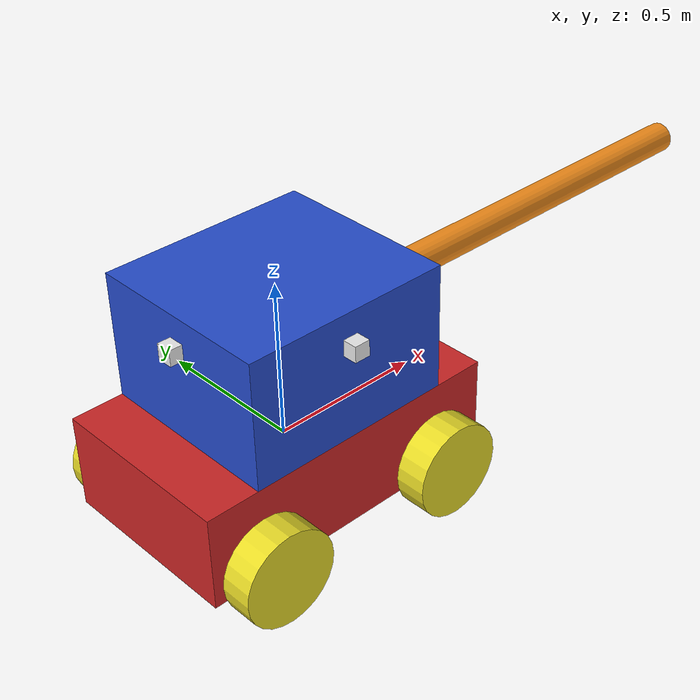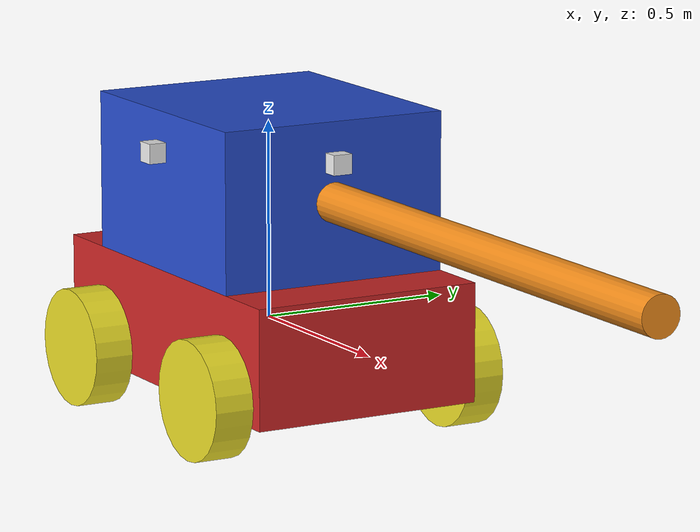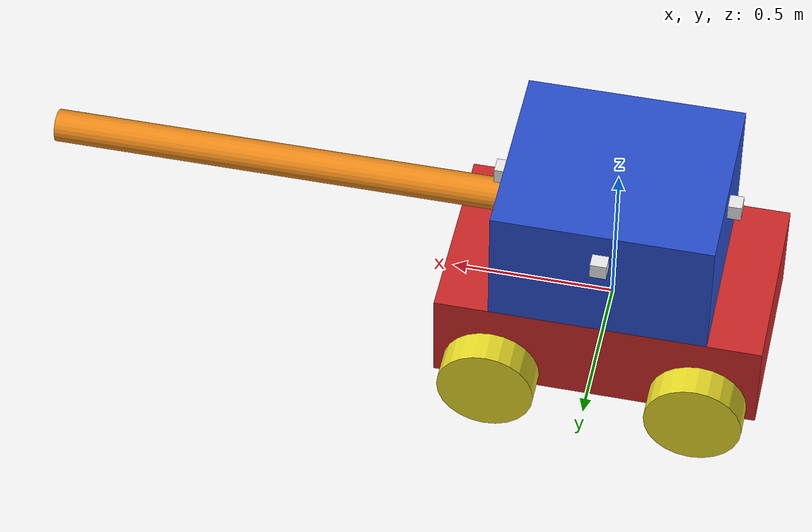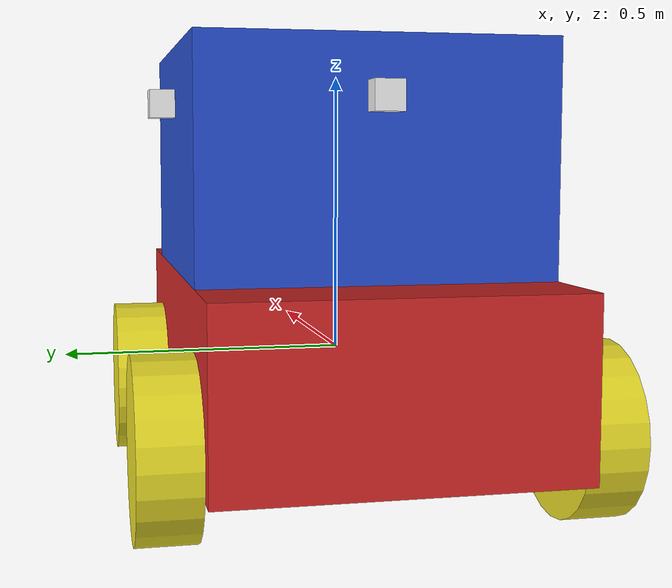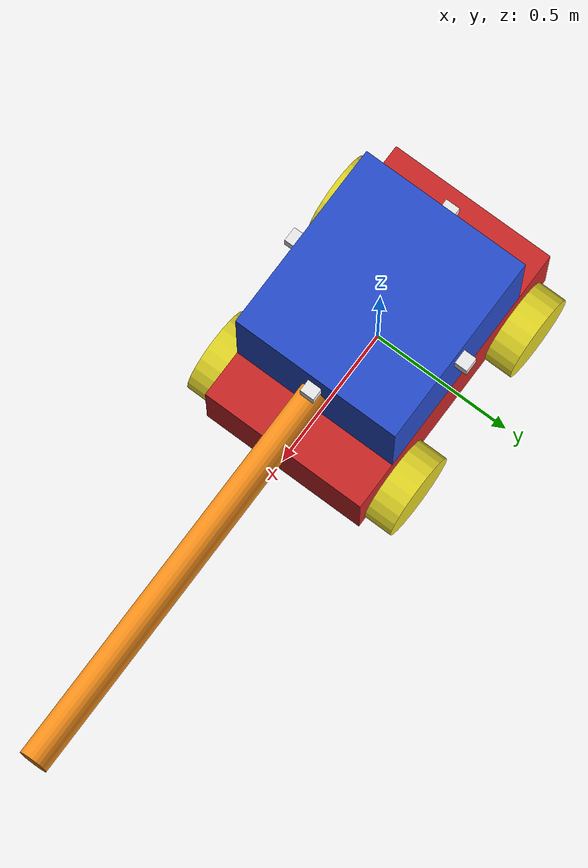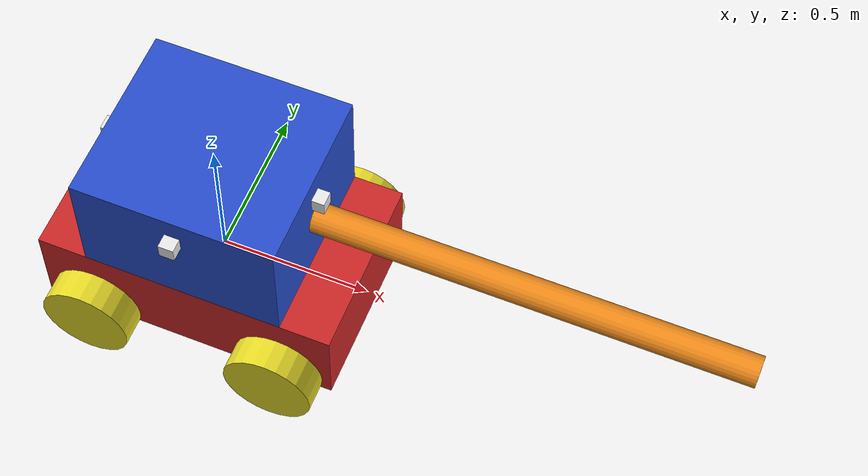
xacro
<?xml version="1.0"?>

<robot name="auto_turret_vehicle"
xmlns:xacro="http://www.ros.org/wiki/xacro">

<xacro:property name="body_link_x_dim" value="1"/>
<xacro:property name="body_link_y_dim" value="0.6"/>
<xacro:property name="body_link_z_dim" value="0.3"/>

<xacro:property name="wheel_link_radius" value="0.15"/>
<xacro:property name="wheel_link_length" value="0.1"/>
<xacro:property name="wheel_link_z_location" value="-0.1"/>

<xacro:property name="body_density" value="2710.0"/>
<xacro:property name="wheel_density" value="2710.0"/>

<xacro:property name="pi_const" value="3.14159265"/>

<xacro:property name="body_mass"
value="${body_density*body_link_x_dim*body_link_y_dim*body_link_z_dim}"/>
<xacro:property name="wheel_mass"
value="${wheel_density*pi_const*wheel_link_radius*wheel_link_radius*wheel_link_length}"/>

<xacro:property name="Iz_wheel"
value="${0.5*wheel_mass*wheel_link_radius*wheel_link_radius}"/>
<xacro:property name="I_wheel"
value="${(1.0/12.0)*wheel_mass*(3.0*wheel_link_radius*wheel_link_radius+wheel_link_length*wheel_link_length)}"/>

<xacro:macro name="inertia_wheel">
    <inertial>
    <origin rpy="0 0 0" xyz="0 0 0"/>
    <mass value="${wheel_mass}"/>
    <inertia ixx="${I_wheel}" ixy="0.0" ixz="0.0" iyy="${I_wheel}" iyz="0.0" izz="${Iz_wheel}"/>
    </inertial>
</xacro:macro>

<xacro:include filename="$(find mobile_robot)/model/robot.gazebo"/>

<link name="dummy">
</link>

<joint name="dummy_joint" type="fixed">
    <parent link="dummy"/>
    <child link="body_link"/>
</joint>

<link name="body_link">
    <visual>
        <geometry>
            <box size="${body_link_x_dim} ${body_link_y_dim} ${body_link_z_dim}"/>
        </geometry>
        <origin rpy="0 0 0" xyz="0 0 0"/>
    </visual>

    <collision>
        <geometry>
            <box size="${body_link_x_dim} ${body_link_y_dim} ${body_link_z_dim}"/>
        </geometry>
        <origin rpy="0 0 0" xyz="0 0 0"/>
    </collision>

    <inertial>
        <origin rpy="0 0 0" xyz="0 0 0"/>
        <mass value="${body_mass}"/>
        <inertia
        ixx="${(1.0/12.0)*body_mass*(body_link_y_dim*body_link_y_dim+body_link_z_dim*body_link_z_dim)}"
        ixy="0" ixz="0" iyy="${(1.0/12.0)*body_mass*(body_link_x_dim*body_link_x_dim+body_link_z_dim*body_link_z_dim)}"
        iyz="0" izz="${(1.0/12.0)*body_mass*(body_link_y_dim*body_link_y_dim+body_link_x_dim*body_link_x_dim)}" />
    </inertial>
</link>

<joint name="wheel1_joint" type="continuous">
    <parent link="body_link"/>
    <child link="wheel1_link"/>
    <origin xyz="${-body_link_x_dim/2+1.2*wheel_link_radius} ${-body_link_y_dim/2-wheel_link_length/2} ${wheel_link_z_location}" rpy="0 0 0"/>
    <axis xyz="0 1 0"/>
    <limit effort="1000" velocity="1000"/>
    <dynamics damping="1.0" friction="1.0"/>
</joint>

<link name="wheel1_link">
    <visual>
        <origin rpy="1.570795 0 0" xyz="0 0 0"/>
        <geometry>
            <cylinder length="${wheel_link_length}" radius="${wheel_link_radius}"/>
        </geometry>
    </visual>

    <collision>
        <origin rpy="1.570795 0 0" xyz="0 0 0"/>
        <geometry>
            <cylinder length="${wheel_link_length}" radius="${wheel_link_radius}"/>
        </geometry>
    </collision>

    <xacro:inertia_wheel/>
</link>

<joint name="wheel2_joint" type="continuous">
    <parent link="body_link"/>
    <child link="wheel2_link"/>
    <origin xyz="${-body_link_x_dim/2+1.2*wheel_link_radius} ${body_link_y_dim/2+wheel_link_length/2} ${wheel_link_z_location}" rpy="0 0 0"/>
    <axis xyz="0 1 0"/>
    <limit effort="1000" velocity="1000"/>
    <dynamics damping="1.0" friction="1.0"/>
</joint>

<link name="wheel2_link">
    <visual>
        <origin rpy="1.570795 0 0" xyz="0 0 0"/>
        <geometry>
            <cylinder length="${wheel_link_length}" radius="${wheel_link_radius}"/>
        </geometry>
    </visual>

    <collision>
        <origin rpy="1.570795 0 0" xyz="0 0 0"/>
        <geometry>
            <cylinder length="${wheel_link_length}" radius="${wheel_link_radius}"/>
        </geometry>
    </collision>

    <xacro:inertia_wheel/>
</link>

<joint name="wheel3_joint" type="continuous">
    <parent link="body_link"/>
    <child link="wheel3_link"/>
    <origin xyz="${body_link_x_dim/2-1.2*wheel_link_radius} ${-body_link_y_dim/2-wheel_link_length/2} ${wheel_link_z_location}" rpy="0 0 0"/>
    <axis xyz="0 1 0"/>
    <limit effort="1000" velocity="1000"/>
    <dynamics damping="1.0" friction="1.0"/>
</joint>

<link name="wheel3_link">
    <visual>
        <origin rpy="1.570795 0 0" xyz="0 0 0"/>
        <geometry>
            <cylinder length="${wheel_link_length}" radius="${wheel_link_radius}"/>
        </geometry>
    </visual>

    <collision>
        <origin rpy="1.570795 0 0" xyz="0 0 0"/>
        <geometry>
            <cylinder length="${wheel_link_length}" radius="${wheel_link_radius}"/>
        </geometry>
    </collision>

    <xacro:inertia_wheel/>
</link>

<joint name="wheel4_joint" type="continuous">
    <parent link="body_link"/>
    <child link="wheel4_link"/>
    <origin xyz="${body_link_x_dim/2-1.2*wheel_link_radius} ${body_link_y_dim/2+wheel_link_length/2} ${wheel_link_z_location}" rpy="0 0 0"/>
    <axis xyz="0 1 0"/>
    <limit effort="1000" velocity="1000"/>
    <dynamics damping="1.0" friction="1.0"/>
</joint>

<link name="wheel4_link">
    <visual>
        <origin rpy="1.570795 0 0" xyz="0 0 0"/>
        <geometry>
            <cylinder length="${wheel_link_length}" radius="${wheel_link_radius}"/>
        </geometry>
    </visual>

    <collision>
        <origin rpy="1.570795 0 0" xyz="0 0 0"/>
        <geometry>
            <cylinder length="${wheel_link_length}" radius="${wheel_link_radius}"/>
        </geometry>
    </collision>

    <xacro:inertia_wheel/>
</link>

<joint name="turret_joint" type="continuous">
    <parent link="body_link"/>
    <child link="turret_link"/>
    <origin xyz="0 0 0.35" rpy="0 0 0"/>
    <axis xyz="0 0 1"/>
</joint>

<link name="turret_link">
    <visual>
        <geometry>
            <box size="${body_link_x_dim/1.5} ${body_link_y_dim} 0.4"/>
        </geometry>
        <origin rpy="0 0 0" xyz="0 0 0"/>
    </visual>

    <collision>
        <geometry>
            <box size="${body_link_x_dim/1.5} ${body_link_y_dim} 0.2"/>
        </geometry>
        <origin rpy="0 0 0" xyz="0 0 0"/>
    </collision>

    <inertial>
        <origin rpy="0 0 0" xyz="0 0 0"/>
        <mass value="${body_mass/7}"/>
        <inertia
        ixx="${(1.0/12.0)*body_mass/3*(body_link_y_dim/2*body_link_y_dim/2+body_link_z_dim/2*body_link_z_dim/2)}"
        ixy="0" ixz="0" iyy="${(1.0/12.0)*body_mass/3*(body_link_x_dim/2*body_link_x_dim/2+body_link_z_dim/2*body_link_z_dim/2)}"
        iyz="0" izz="${(1.0/12.0)*body_mass/3*(body_link_y_dim/2*body_link_y_dim/2+body_link_x_dim/2*body_link_x_dim/2)}" />
    </inertial>
</link>

<joint name="gun_joint" type="fixed">
    <parent link="turret_link"/>
    <child link="gun_link"/>
    <origin xyz="${body_link_x_dim/1.0} 0 0" rpy="0 0 0"/>
    <axis xyz="0 0 0"/>
</joint>

<link name="gun_link">
    <visual>
        <geometry>
            <cylinder length="${body_link_x_dim*1.5}" radius="0.05"/>
        </geometry>
        <origin rpy="0 ${pi_const/2} 0" xyz="0 0 0"/>
    </visual>

    <collision>
        <geometry>
            <box size="${body_link_x_dim*1.5} 0.1 0.1"/>
        </geometry>
        <origin rpy="0 0 0" xyz="0 0 0"/>
    </collision>

    <inertial>
        <origin rpy="0 0 0" xyz="0 0 0"/>
        <mass value="${body_mass/10}"/>
        <inertia
        ixx="${(1.0/12.0)*body_mass/5*(body_link_y_dim/2*body_link_y_dim/2+body_link_z_dim/2*body_link_z_dim/2)}"
        ixy="0" ixz="0" iyy="${(1.0/12.0)*body_mass/5*(body_link_x_dim/2*body_link_x_dim/2+body_link_z_dim/2*body_link_z_dim/2)}"
        iyz="0" izz="${(1.0/12.0)*body_mass/5*(body_link_y_dim/2*body_link_y_dim/2+body_link_x_dim/2*body_link_x_dim/2)}" />
    </inertial>
</link>

<joint name="front_camera_joint" type="fixed">
    <parent link="turret_link"/>
    <child link="front_camera_link"/>
    <origin xyz="0.35 0 0.1" rpy="0 0 0"/>
</joint>

<link name="front_camera_link">
    <visual>
        <geometry>
            <box size="0.05 0.05 0.05"/>
        </geometry>
        <origin rpy="0 0 0" xyz="0 0 0"/>
    </visual>

    <collision>
        <geometry>
            <box size="0.05 0.05 0.05"/>
        </geometry>
        <origin rpy="0 0 0" xyz="0 0 0"/>
    </collision>

    <inertial>
        <origin rpy="0 0 0" xyz="0 0 0"/>
        <mass value="${body_mass/30}"/>
        <inertia
        ixx="${(1.0/12.0)*body_mass/5*(body_link_y_dim/2*body_link_y_dim/2+body_link_z_dim/2*body_link_z_dim/2)}"
        ixy="0" ixz="0" iyy="${(1.0/12.0)*body_mass/5*(body_link_x_dim/2*body_link_x_dim/2+body_link_z_dim/2*body_link_z_dim/2)}"
        iyz="0" izz="${(1.0/12.0)*body_mass/5*(body_link_y_dim/2*body_link_y_dim/2+body_link_x_dim/2*body_link_x_dim/2)}" />
    </inertial>
</link>

<joint name="front_camera_optical_joint" type="fixed">
    <parent link="front_camera_link"/>
    <child link="front_camera_link_optical"/>
    <origin xyz="0 0 0" rpy="${-pi_const/2} 0 ${-pi_const/2}"/>
</joint>

<link name="front_camera_link_optical">
</link>

<joint name="right_camera_joint" type="fixed">
    <parent link="turret_link"/>
    <child link="right_camera_link"/>
    <origin xyz="0 -0.32 0.1" rpy="0 0 ${-pi_const/2}"/>
</joint>

<link name="right_camera_link">
    <visual>
        <geometry>
            <box size="0.05 0.05 0.05"/>
        </geometry>
        <origin rpy="0 0 0" xyz="0 0 0"/>
    </visual>

    <collision>
        <geometry>
            <box size="0.05 0.05 0.05"/>
        </geometry>
        <origin rpy="0 0 0" xyz="0 0 0"/>
    </collision>

    <inertial>
        <origin rpy="0 0 0" xyz="0 0 0"/>
        <mass value="${body_mass/30}"/>
        <inertia
        ixx="${(1.0/12.0)*body_mass/5*(body_link_y_dim/2*body_link_y_dim/2+body_link_z_dim/2*body_link_z_dim/2)}"
        ixy="0" ixz="0" iyy="${(1.0/12.0)*body_mass/5*(body_link_x_dim/2*body_link_x_dim/2+body_link_z_dim/2*body_link_z_dim/2)}"
        iyz="0" izz="${(1.0/12.0)*body_mass/5*(body_link_y_dim/2*body_link_y_dim/2+body_link_x_dim/2*body_link_x_dim/2)}" />
    </inertial>
</link>

<joint name="right_camera_optical_joint" type="fixed">
    <parent link="right_camera_link"/>
    <child link="right_camera_link_optical"/>
    <origin xyz="0 0 0" rpy="${-pi_const/2} 0 ${-pi_const/2}"/>
</joint>

<link name="right_camera_link_optical">
</link>

<joint name="rear_camera_joint" type="fixed">
    <parent link="turret_link"/>
    <child link="rear_camera_link"/>
    <origin xyz="-0.35 0 0.1" rpy="0 0 ${pi_const}"/>
</joint>

<link name="rear_camera_link">
    <visual>
        <geometry>
            <box size="0.05 0.05 0.05"/>
        </geometry>
        <origin rpy="0 0 0" xyz="0 0 0"/>
    </visual>

    <collision>
        <geometry>
            <box size="0.05 0.05 0.05"/>
        </geometry>
        <origin rpy="0 0 0" xyz="0 0 0"/>
    </collision>

    <inertial>
        <origin rpy="0 0 0" xyz="0 0 0"/>
        <mass value="${body_mass/30}"/>
        <inertia
        ixx="${(1.0/12.0)*body_mass/5*(body_link_y_dim/2*body_link_y_dim/2+body_link_z_dim/2*body_link_z_dim/2)}"
        ixy="0" ixz="0" iyy="${(1.0/12.0)*body_mass/5*(body_link_x_dim/2*body_link_x_dim/2+body_link_z_dim/2*body_link_z_dim/2)}"
        iyz="0" izz="${(1.0/12.0)*body_mass/5*(body_link_y_dim/2*body_link_y_dim/2+body_link_x_dim/2*body_link_x_dim/2)}" />
    </inertial>
</link>

<joint name="rear_camera_optical_joint" type="fixed">
    <parent link="rear_camera_link"/>
    <child link="rear_camera_link_optical"/>
    <origin xyz="0 0 0" rpy="${-pi_const/2} 0 ${-pi_const/2}"/>
</joint>

<link name="rear_camera_link_optical">
</link>

<joint name="left_camera_joint" type="fixed">
    <parent link="turret_link"/>
    <child link="left_camera_link"/>
    <origin xyz="0 0.32 0.1" rpy="0 0 ${pi_const/2}"/>
</joint>

<link name="left_camera_link">
    <visual>
        <geometry>
            <box size="0.05 0.05 0.05"/>
        </geometry>
        <origin rpy="0 0 0" xyz="0 0 0"/>
    </visual>

    <collision>
        <geometry>
            <box size="0.05 0.05 0.05"/>
        </geometry>
        <origin rpy="0 0 0" xyz="0 0 0"/>
    </collision>

    <inertial>
        <origin rpy="0 0 0" xyz="0 0 0"/>
        <mass value="${body_mass/30}"/>
        <inertia
        ixx="${(1.0/12.0)*body_mass/5*(body_link_y_dim/2*body_link_y_dim/2+body_link_z_dim/2*body_link_z_dim/2)}"
        ixy="0" ixz="0" iyy="${(1.0/12.0)*body_mass/5*(body_link_x_dim/2*body_link_x_dim/2+body_link_z_dim/2*body_link_z_dim/2)}"
        iyz="0" izz="${(1.0/12.0)*body_mass/5*(body_link_y_dim/2*body_link_y_dim/2+body_link_x_dim/2*body_link_x_dim/2)}" />
    </inertial>
</link>

<joint name="left_camera_optical_joint" type="fixed">
    <parent link="left_camera_link"/>
    <child link="left_camera_link_optical"/>
    <origin xyz="0 0 0" rpy="${-pi_const/2} 0 ${-pi_const/2}"/>
</joint>

<link name="left_camera_link_optical">
</link>

<ros2_control name="RobotSystem" type="system">
        <hardware>
            <plugin>gazebo_ros2_control/GazeboSystem</plugin>
        </hardware>

        <joint name="turret_joint">
            <command_interface name="position">
                <param name="min">-2.879793</param>
                <param name="max">2.879793</param>
            </command_interface>
            <state_interface name="position"/>
        </joint>
</ros2_control>
</robot>
